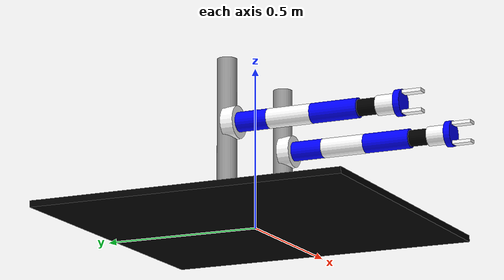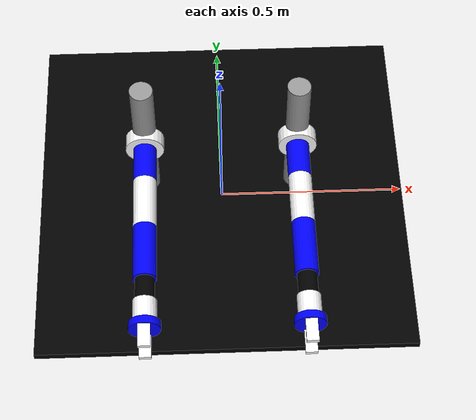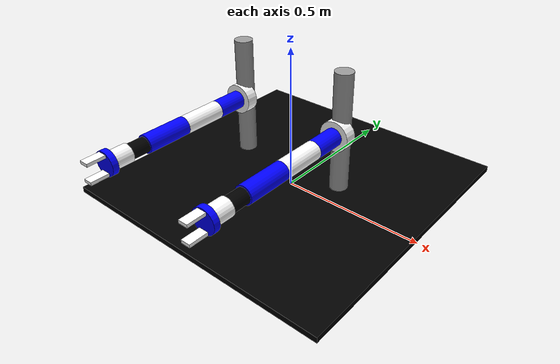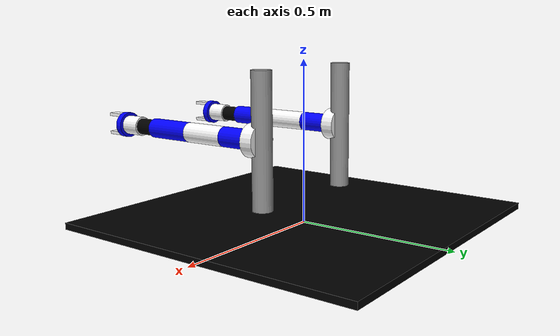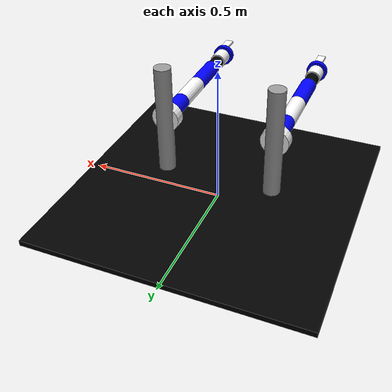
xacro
<?xml version="1.0"?>
<robot name="arm2" xmlns:xacro="http://www.ros.org/wiki/xacro">
    <xacro:property name="stand_mass"   value="2" />
    <xacro:property name="stand_radius" value="0.03"/>
    <xacro:property name="stand_length" value="0.4"/>
    <xacro:include filename="$(find marm_description)/urdf/arm_base_gazebo.xacro" />
    <link name="virtuallink" />
    <gazebo reference="virtuallink">
        <material>Gazebo/Gray</material>
    </gazebo>
    <joint name="virtualjoint" type="fixed">
        <origin xyz="0 0 0" rpy="0 0 0" />
        <parent link="virtuallink" />
        <child link="base_link" />
    </joint>
    <link name="base_link">
        <visual>
			    <origin xyz=" 0 0 0.02"  rpy="0 0 0"/>
			    <geometry>
				      <box size="1 1 0.02" />
			    </geometry>
			    <material name="Black" />
        </visual>
        <collision>
            <origin xyz=" 0 0 0.02"  rpy="0 0 0"/>
            <geometry>
                <box size="1 1 0.02" />
            </geometry>
        </collision>
        <box_inertial_matrix m="1000" w="1" h="0.02" d="1"/>
    </link>
<!-- left_arm -->
    <joint name="base_stand_joint1" type="fixed">
        <origin xyz="0.2 0 ${stand_length/2+0.08}" rpy="0 0 0" />
        <parent link="base_link"/>
        <child link="stand1" />
    </joint>

    <link name="stand1">
        <visual>
            <origin xyz=" 0 0 0" rpy="0 0 0" />
            <geometry>
                <cylinder length="${stand_length}" radius="${stand_radius}"/>
            </geometry>
            <material name="gray" />
        </visual>
        <collision>
            <origin xyz=" 0 0 0" rpy="0 0 0" />
            <geometry>
                <cylinder length="${stand_length}" radius="${stand_radius}"/>
            </geometry>
        </collision>
        <cylinder_inertial_matrix  m="${stand_mass}" r="${stand_radius}" h="${stand_length}" />
    </link>

    <gazebo reference="stand1">
        <material>Gazebo/Gray</material>
    </gazebo>

    <arm_base prefix="left" parent="stand1" xyz="0 0 0" rpy="${M_PI/2} 0 0"/>

<!-- right_arm -->
    <joint name="base_stand_joint2" type="fixed">
        <origin xyz="-0.2 0 ${stand_length/2+0.08}" rpy="0 0 0" />
        <parent link="base_link"/>
        <child link="stand2" />
    </joint>

    <link name="stand2">
        <visual>
            <origin xyz=" 0 0 0" rpy="0 0 0" />
            <geometry>
                <cylinder length="${stand_length}" radius="${stand_radius}"/>
            </geometry>
            <material name="gray" />
        </visual>
        <collision>
            <origin xyz=" 0 0 0" rpy="0 0 0" />
            <geometry>
                <cylinder length="${stand_length}" radius="${stand_radius}"/>
            </geometry>
        </collision>
        <cylinder_inertial_matrix  m="${stand_mass}" r="${stand_radius}" h="${stand_length}" />
    </link>

    <gazebo reference="stand2">
        <material>Gazebo/Gray</material>
    </gazebo>

    <arm_base prefix="right" parent="stand2" xyz="0 0 0" rpy="${M_PI/2} 0 0"/>

   <!-- ros_control plugin -->
     <gazebo>
        <plugin name="gazebo_ros_control" filename="libgazebo_ros_control.so">
            <robotNamespace>/</robotNamespace>
        </plugin>
    </gazebo>
</robot>

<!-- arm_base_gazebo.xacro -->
<robot name="arm" xmlns:xacro="http://www.ros.org/wiki/xacro">

    <!-- Defining the colors used in this robot -->
    <material name="Black">
        <color rgba="0 0 0 1"/>
    </material>
    <material name="White">
        <color rgba="1 1 1 1"/>
    </material>
    <material name="Blue">
        <color rgba="0 0 1 1"/>
    </material>
    <material name="Red">
        <color rgba="1 0 0 1"/>
    </material>

    <!-- Constants -->
    <xacro:property name="M_PI" value="3.14159"/>

    <!-- link1 properties -->
    <xacro:property name="link0_radius" value="0.05" />
    <xacro:property name="link0_length" value="0.04" />
    <xacro:property name="link0_mass" value="1" />

    <!-- link1 properties -->
    <xacro:property name="link1_radius" value="0.03" />
    <xacro:property name="link1_length" value="0.10" />
    <xacro:property name="link1_mass" value="1" />

    <!-- link2 properties -->
    <xacro:property name="link2_radius" value="0.03" />
    <xacro:property name="link2_length" value="0.14" />
    <xacro:property name="link2_mass" value="0.8" />

    <!-- link3 properties -->
    <xacro:property name="link3_radius" value="0.03" />
    <xacro:property name="link3_length" value="0.15" />
    <xacro:property name="link3_mass" value="0.8" />

    <!-- ink4 properties -->
    <xacro:property name="link4_radius" value="0.025" />
    <xacro:property name="link4_length" value="0.06" />
    <xacro:property name="link4_mass" value="0.7" />

    <!-- link5 properties -->
    <xacro:property name="link5_radius" value="0.03" />
    <xacro:property name="link5_length" value="0.06" />
    <xacro:property name="link5_mass" value="0.7" />

    <!-- link6 properties -->
    <xacro:property name="link6_radius" value="0.04" />
    <xacro:property name="link6_length" value="0.02" />
    <xacro:property name="link6_mass" value="0.6" />

    <!-- gripper -->
    <xacro:property name="gripper_length" value="0.03" />
    <xacro:property name="gripper_width" value="0.01" />
    <xacro:property name="gripper_height" value="0.06" />
    <xacro:property name="gripper_mass" value="0.5" />

    <!-- Gripper frame -->
    <xacro:property name="grasp_frame_radius" value="0.001" />

    <!-- Macro for inertia matrix -->
    <xacro:macro name="cylinder_inertial_matrix" params="m r h">
        <inertial>
            <mass value="${m}" />
            <inertia ixx="${m*(3*r*r+h*h)/12}" ixy = "0" ixz = "0"
                iyy="${m*(3*r*r+h*h)/12}" iyz = "0"
                izz="${m*r*r/2}" />
        </inertial>
    </xacro:macro>

    <xacro:macro name="box_inertial_matrix" params="m w h d">
        <inertial>
            <mass value="${m}" />
            <inertia ixx="${m*(h*h+d*d)/12}" ixy = "0" ixz = "0"
                iyy="${m*(w*w+d*d)/12}" iyz = "0"
                izz="${m*(w*w+h*h)/12}" />
        </inertial>
    </xacro:macro>

    <!-- /////////////////////////////////////   ARM BASE    ////////////////////////////////////////////// -->
    <xacro:macro name="arm_base" params="prefix parent xyz rpy">
        <joint name="${prefix}_${parent}_arm_joint" type="fixed">
            <origin xyz="${xyz}" rpy="${rpy}" />
            <parent link="${parent}"/>
            <child link="${prefix}_base_arm" />
        </joint>

        <link name="${prefix}_base_arm">
            <visual>
                <origin xyz="0 0 0" rpy="0 0 0" />
                <geometry>
                    <box size="0.001 0.001 0.001" />
                </geometry>
            </visual>
        </link>

        <joint name="${prefix}_base_joint" type="fixed">
            <origin xyz="0 0 ${link0_length/2}" rpy="0 0 0" />
            <parent link="${prefix}_base_arm"/>
            <child link="${prefix}_link0" />
        </joint>

        <!-- /////////////////////////////////////  link0    ////////////////////////////////////////////// -->
        <link name="${prefix}_link0">
            <visual>
                <origin xyz="0 0 0" rpy="0 0 0" />
                <geometry>
                    <cylinder radius="${link0_radius}" length="${link0_length}"/>
                </geometry>
                <material name="White" />
            </visual>
            <collision>
                <origin xyz="0 0 0" rpy="0 0 0" />
                <geometry>
                    <cylinder radius="${link0_radius}" length="${link0_length}"/>
                </geometry>
            </collision>
            <cylinder_inertial_matrix m="${link0_mass}" r="${link0_radius}" h="${link0_length}"/>
        </link>

        <joint name="${prefix}_joint1" type="revolute">
            <parent link="${prefix}_link0"/>
            <child link="${prefix}_link1"/>
            <origin xyz="0 0 ${link0_length/2}" rpy="0 ${M_PI/2} 0" />
            <axis xyz="-1 0 0" />
            <limit effort="300" velocity="1" lower="${-M_PI}" upper="${M_PI}"/>
        </joint>

        <!-- /////////////////////////////////////   link1  ////////////////////////////////////////////// -->
        <link name="${prefix}_link1" >
            <visual>
                <origin xyz="-${link1_length/2} 0 0" rpy="0 ${M_PI/2} 0" />
                <geometry>
                    <cylinder radius="${link1_radius}" length="${link1_length}"/>
                </geometry>
                <material name="Blue" />
            </visual>
            <collision>
                <origin xyz="-${link1_length/2} 0 0" rpy="0 ${M_PI/2} 0" />
                <geometry>
                    <cylinder radius="${link1_radius}" length="${link1_length}"/>
                </geometry>
            </collision>
            <cylinder_inertial_matrix m="${link1_mass}" r="${link1_radius}" h="${link1_length}"/>
        </link>

        <joint name="${prefix}_joint2" type="revolute">
            <parent link="${prefix}_link1"/>
            <child link="${prefix}_link2"/>
            <origin xyz="-${link1_length} 0 0.0" rpy="-${M_PI/2} 0 ${M_PI/2}" />
            <axis xyz="1 0 0" />
            <limit effort="300" velocity="1" lower="${-M_PI}" upper="${M_PI}" />
        </joint>

        <!-- ///////////////////////////////////////   link2  ////////////////////////////////////////////// -->
        <link name="${prefix}_link2" >
            <visual>
                <origin xyz="0 0 ${link2_length/2}" rpy="0 0 0" />
                <geometry>
                    <cylinder radius="${link2_radius}" length="${link2_length}"/>
                </geometry>
                <material name="White" />
            </visual>

            <collision>
                <origin xyz="0 0 ${link2_length/2}" rpy="0 0 0" />
                <geometry>
                    <cylinder radius="${link2_radius}" length="${link2_length}"/>
                </geometry>
            </collision>
            <cylinder_inertial_matrix m="${link2_mass}" r="${link2_radius}" h="${link2_length}"/>
        </link>

        <joint name="${prefix}_joint3" type="revolute">
            <parent link="${prefix}_link2"/>
            <child link="${prefix}_link3"/>
            <origin xyz="0 0 ${link2_length}" rpy="0 ${M_PI} 0" />
            <axis xyz="-1 0 0" />
            <limit effort="300" velocity="1" lower="${-M_PI}" upper="${M_PI}" />
        </joint>

        <!-- /////////////////////////////////   link3  ///////////////////////////////////////////////////// -->
        <link name="${prefix}_link3" >
            <visual>
                <origin xyz="0 0 -${link3_length/2}" rpy="0 0 0" />
                <geometry>
                    <cylinder radius="${link3_radius}" length="${link3_length}"/>
                </geometry>
                <material name="Blue" />
            </visual>
            <collision>
                <origin xyz="0 0 -${link3_length/2}" rpy="0 0 0" />
                <geometry>
                    <cylinder radius="${link3_radius}" length="${link3_length}"/>
                </geometry>
            </collision>
            <cylinder_inertial_matrix m="${link3_mass}" r="${link3_radius}" h="${link3_length}"/>
        </link>

        <joint name="${prefix}_joint4" type="revolute">
            <parent link="${prefix}_link3"/>
            <child link="${prefix}_link4"/>
            <origin xyz="0.0 0.0 -${link3_length}" rpy="0 ${M_PI/2} ${M_PI}" />
            <axis xyz="1 0 0" />
            <limit effort="300" velocity="1" lower="${-M_PI}" upper="${M_PI}" />
        </joint>

        <!-- ///////////////////////////////////   link4  //////////////////////////////////////////////// -->
        <link name="${prefix}_link4" >
            <visual>
                <origin xyz="${link4_length/2} 0 0" rpy="0 ${M_PI/2} 0" />
                <geometry>
                    <cylinder radius="${link4_radius}" length="${link4_length}"/>
                </geometry>
                <material name="Black" />
            </visual>
            <collision>
                <origin xyz="${link4_length/2} 0 0" rpy="0 ${M_PI/2} 0" />
                <geometry>
                    <cylinder radius="${link4_radius}" length="${link4_length}"/>
                </geometry>
            </collision>
            <cylinder_inertial_matrix m="${link4_mass}" r="${link4_radius}" h="${link4_length}"/>
        </link>

        <joint name="${prefix}_joint5" type="revolute">
            <parent link="${prefix}_link4"/>
            <child link="${prefix}_link5"/>
            <origin xyz="${link4_length} 0.0 0.0" rpy="0 ${M_PI/2} 0" />
            <axis xyz="1 0 0" />
            <limit effort="300" velocity="1" lower="${-M_PI}" upper="${M_PI}" />
        </joint>

        <!-- //////////////////////////////////   link5  ///////////////////////////////////////////////// -->
        <link name="${prefix}_link5">
            <visual>
                <origin xyz="0 0 ${link4_length/2}" rpy="0 0 0" />
                <geometry>
                    <cylinder radius="${link5_radius}" length="${link5_length}"/>
                </geometry>
                <material name="White" />
            </visual>
            <collision>
                <origin xyz="0 0 ${link4_length/2} " rpy="0 0 0" />
                <geometry>
                    <cylinder radius="${link5_radius}" length="${link5_length}"/>
                </geometry>
            </collision>
            <cylinder_inertial_matrix m="${link5_mass}" r="${link5_radius}" h="${link5_length}"/>
        </link>

        <joint name="${prefix}_joint6" type="revolute">
            <parent link="${prefix}_link5"/>
            <child link="${prefix}_link6"/>
            <origin xyz="0 0 ${link4_length}" rpy="${1.5*M_PI} -${M_PI/2} 0" />
            <axis xyz="1 0 0" />
            <limit effort="300" velocity="1" lower="${-2*M_PI}" upper="${2*M_PI}" />
        </joint>

        <!-- ////////////////////////////////   link6  ///////////////////////////////////////////////// -->
        <link name="${prefix}_link6">
            <visual>
                <origin xyz="${link6_length/2} 0 0 " rpy="0 ${M_PI/2} 0" />
                <geometry>
                    <cylinder radius="${link6_radius}" length="${link6_length}"/>
                </geometry>
                <material name="Blue" />
            </visual>
            <collision>
                <origin xyz="${link6_length/2} 0 0" rpy="0 ${M_PI/2} 0" />
                <geometry>
                    <cylinder radius="${link6_radius}" length="${link6_length}"/>
                </geometry>
            </collision>
            <cylinder_inertial_matrix m="${link6_mass}" r="${link6_radius}" h="${link6_length}"/>
        </link>

        <!--joint name="${prefix}_finger_joint1" type="prismatic"-->
        <joint name="${prefix}_finger_joint1" type="fixed">
            <parent link="${prefix}_link6"/>
            <child link="${prefix}_gripper_finger_link1"/>
            <origin xyz="${link6_length} -0.03 0" rpy="0 0 0" />
        </joint>

        <!-- //////////////////////////////////////   gripper   ////////////////////////////////////////////// -->
        <!-- LEFT GRIPPER AFT LINK -->
        <link name="${prefix}_gripper_finger_link1">
            <visual>
                <origin xyz="${gripper_height/2} 0 0" rpy="0 ${M_PI/2} 0" />
                <geometry>
                    <box size="${gripper_length} ${gripper_width} ${gripper_height}" />
                </geometry>
                <material name="White" />
            </visual>
            <collision>
                <origin xyz="${gripper_height/2} 0 0" rpy="0 ${M_PI/2} 0" />
                <geometry>
                    <box size="${gripper_length} ${gripper_width} ${gripper_height}" />
                </geometry>
            </collision>
            <box_inertial_matrix m="${gripper_mass}" w="${gripper_width}" h="${gripper_height}" d="${gripper_length}"/>
        </link>

        <joint name="${prefix}_finger_joint2" type="fixed">
            <parent link="${prefix}_link6"/>
            <child link="${prefix}_gripper_finger_link2"/>
            <origin xyz="${link6_length} 0.03 0" rpy="0 0 0" />
        </joint>

        <!-- RIGHT GRIPPER AFT LINK -->
        <link name="${prefix}_gripper_finger_link2">
            <visual>
                <origin xyz="${gripper_height/2} 0 0" rpy="0 ${M_PI/2} 0" />
                <geometry>
                    <box size="${gripper_length} ${gripper_width} ${gripper_height}" />
                </geometry>
                <material name="White" />
            </visual>
            <collision>
                <origin xyz="${gripper_height/2} 0 0" rpy="0 ${M_PI/2} 0" />
                <geometry>
                    <box size="${gripper_length} ${gripper_width} ${gripper_height}" />
                </geometry>
            </collision>
            <box_inertial_matrix m="${gripper_mass}" w="${gripper_width}" h="${gripper_height}" d="${gripper_length}"/>
        </link>

        <!-- Grasping frame -->
        <link name="${prefix}_grasping_frame"/>

        <joint name="${prefix}_grasping_frame_joint" type="fixed">
            <parent link="${prefix}_link6"/>
            <child link="${prefix}_grasping_frame"/>
            <origin xyz="${gripper_height} 0 0" rpy="0 0 0"/>
        </joint>

        <!-- /////////////////////////////////   Gazebo   ////////////////////////////////////// -->
        <gazebo reference="${prefix}_base_arm">
            <material>Gazebo/White</material>
        </gazebo>
        <gazebo reference="${prefix}_link1">
            <material>Gazebo/Blue</material>
        </gazebo>
        <gazebo reference="${prefix}_link2">
            <material>Gazebo/White</material>
        </gazebo>
        <gazebo reference="${prefix}_link3">
            <material>Gazebo/Blue</material>
        </gazebo>
        <gazebo reference="${prefix}_link4">
            <material>Gazebo/Black</material>
        </gazebo>
        <gazebo reference="${prefix}_link5">
            <material>Gazebo/White</material>
        </gazebo>
        <gazebo reference="${prefix}_link6">
            <material>Gazebo/Blue</material>
        </gazebo>

        <!-- Transmissions for ROS Control -->
        <xacro:macro name="transmission_block" params="joint_name">
            <transmission name="${joint_name}_trans">
                <type>transmission_interface/SimpleTransmission</type>
                <joint name="${joint_name}">
                    <hardwareInterface>hardware_interface/EffortJointInterface</hardwareInterface>
                </joint>
                <actuator name="${joint_name}_motor">
                    <hardwareInterface>hardware_interface/EffortJointInterface</hardwareInterface>
                    <mechanicalReduction>1</mechanicalReduction>
                </actuator>
            </transmission>
        </xacro:macro>

        <xacro:transmission_block joint_name="${prefix}_joint1"/>
        <xacro:transmission_block joint_name="${prefix}_joint2"/>
        <xacro:transmission_block joint_name="${prefix}_joint3"/>
        <xacro:transmission_block joint_name="${prefix}_joint4"/>
        <xacro:transmission_block joint_name="${prefix}_joint5"/>
        <xacro:transmission_block joint_name="${prefix}_joint6"/>
        <!--xacro:transmission_block joint_name="${prefix}_finger_joint1"/-->

    </xacro:macro>

</robot>
